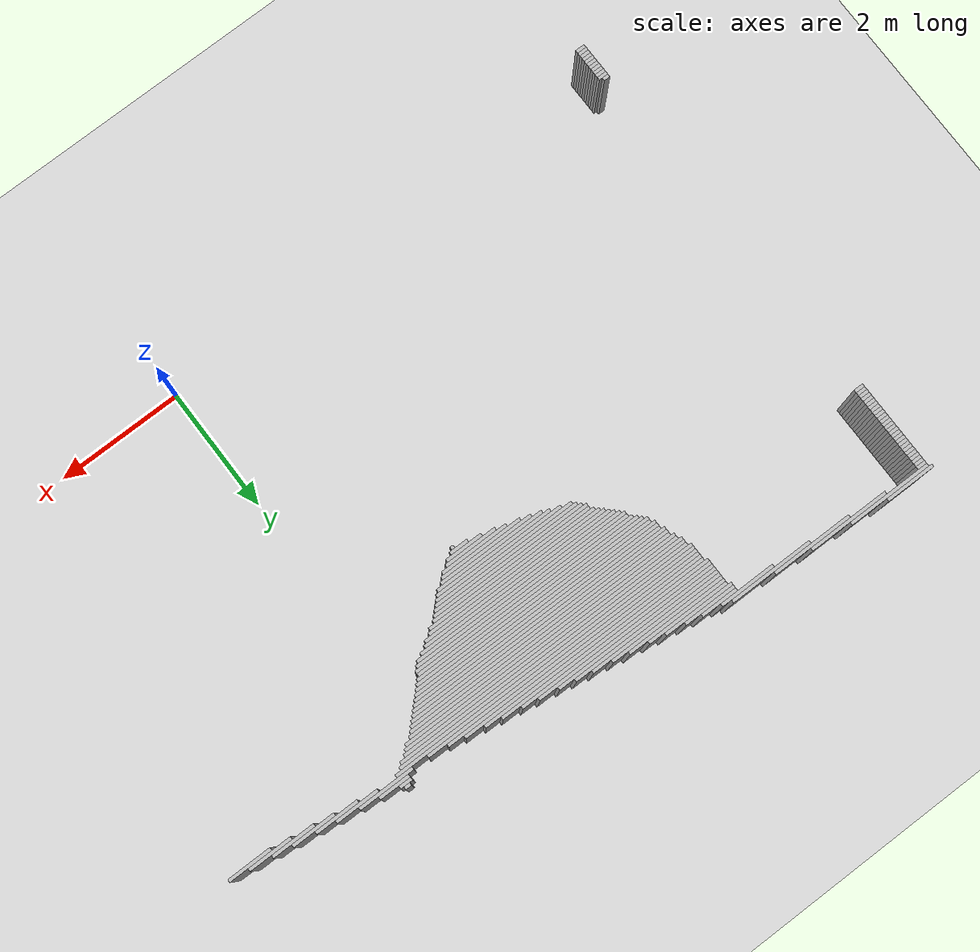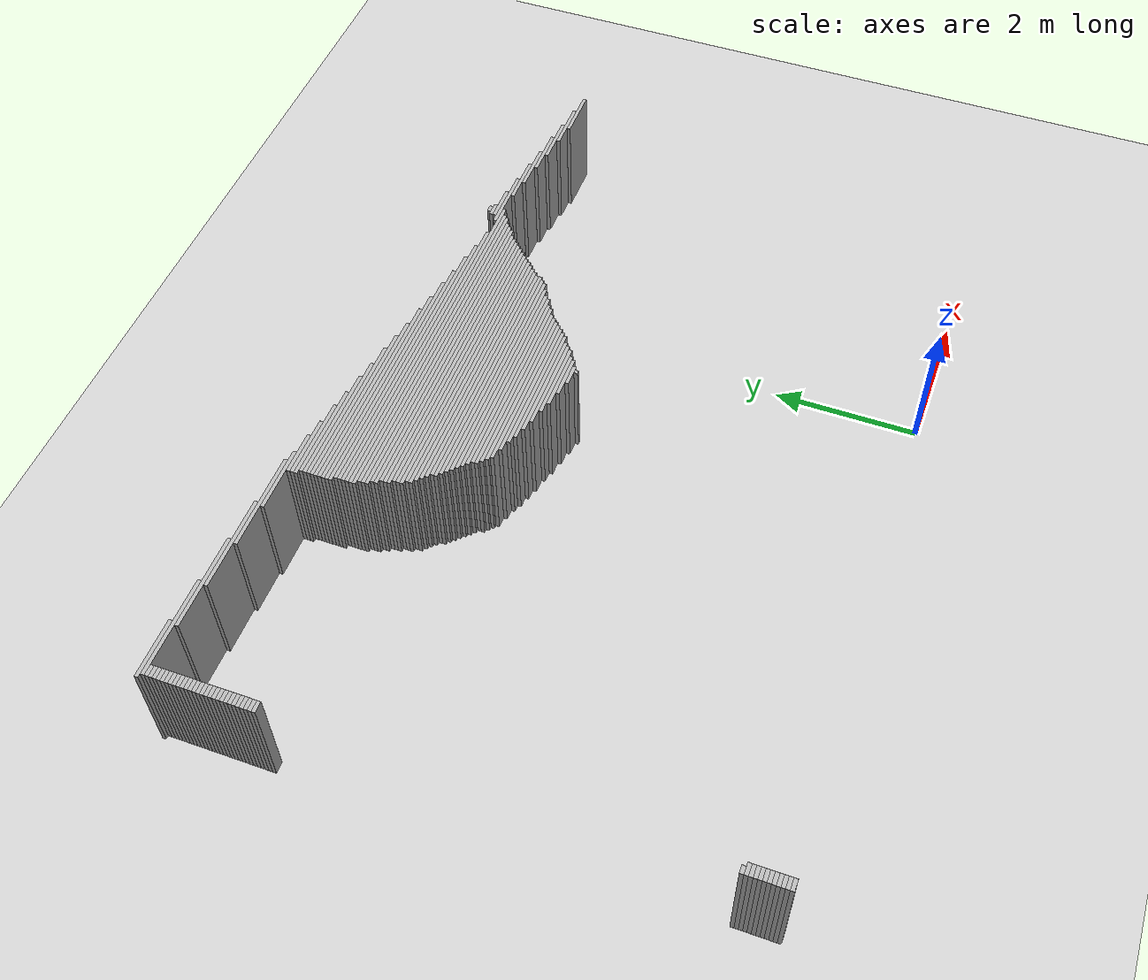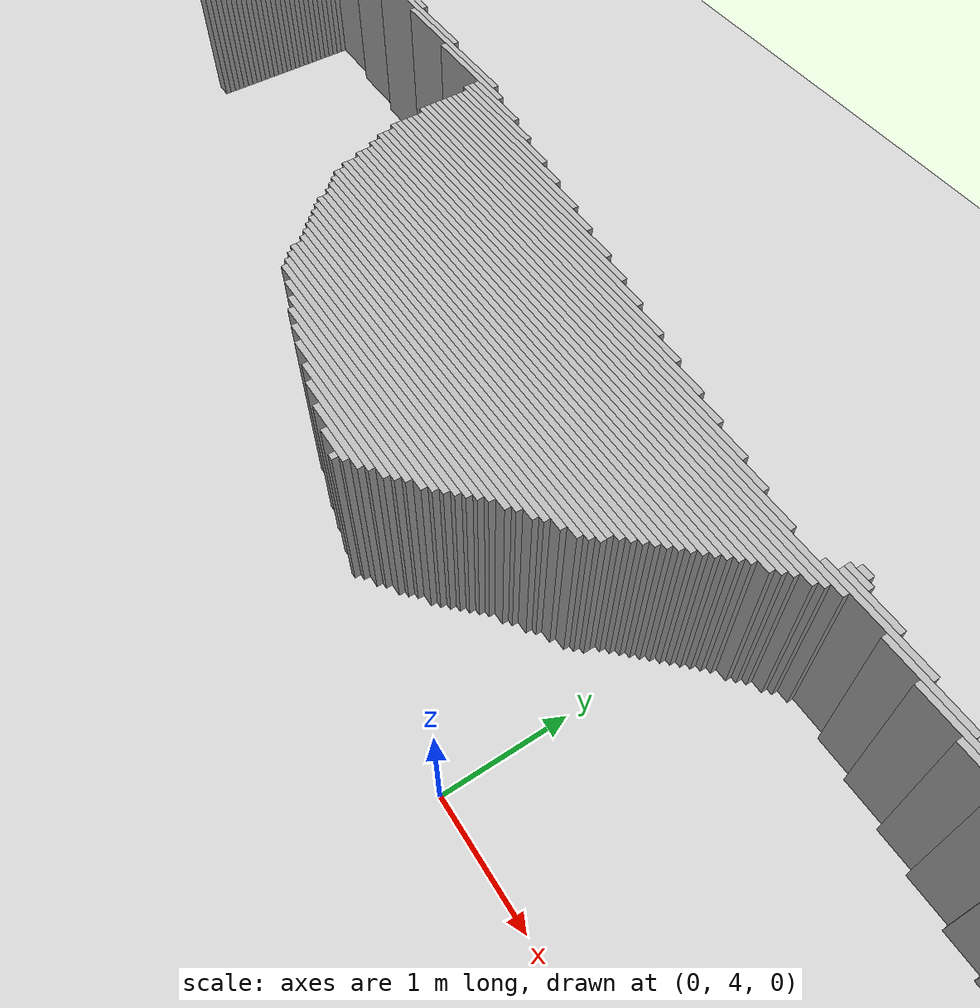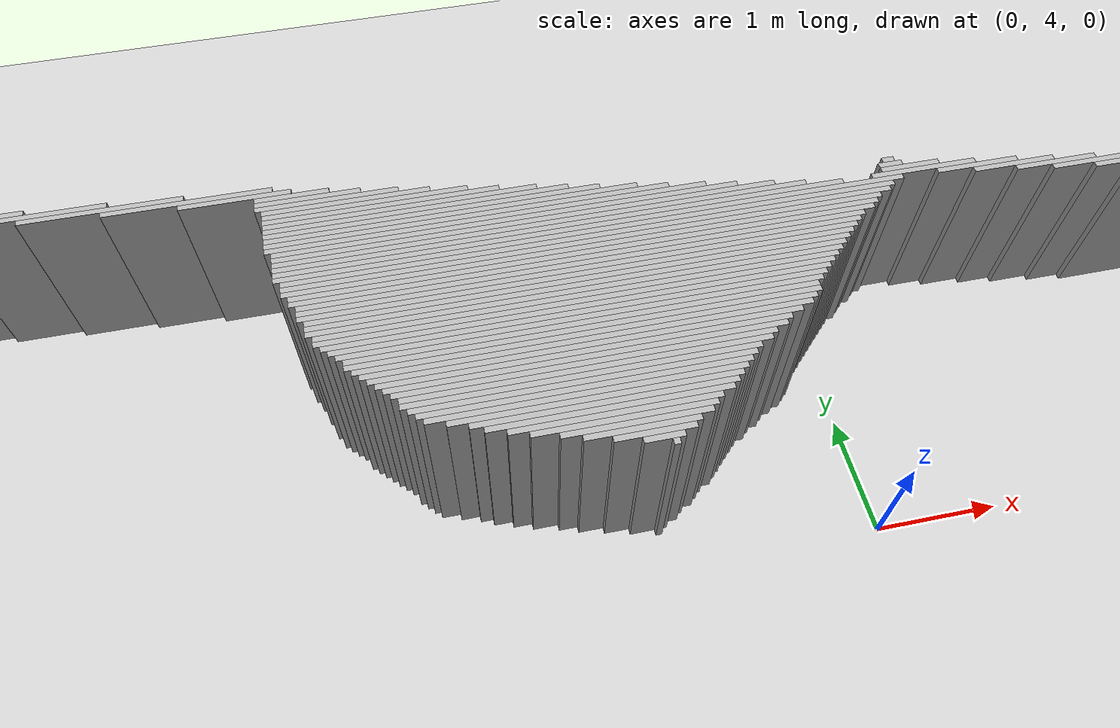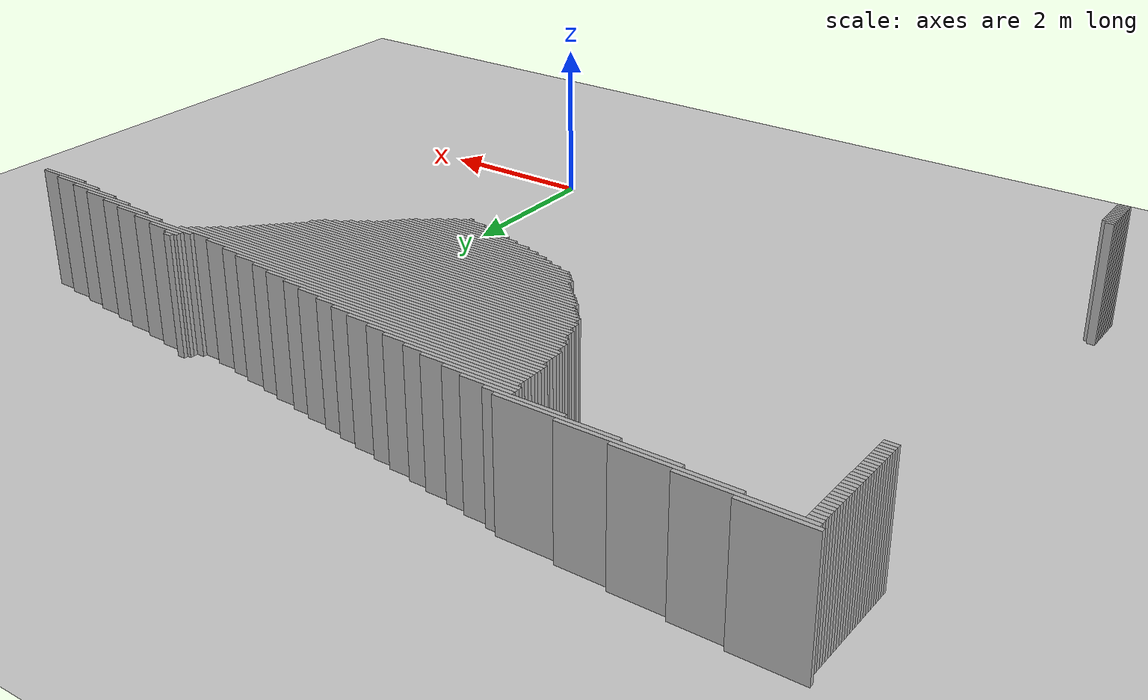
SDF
<sdf version="1.6">
 <world name="df_walled">
  <include><uri>model://sun</uri></include>
  <include><uri>model://ground_plane</uri></include>
  <model name="df_walls">
   <static>true</static>
   <link name="wall_00002">
    <pose>-7.2610 7.4410 0.7500 0 0 0</pose>
    <collision name="col"><geometry><box><size>0.8000 0.0500 1.5000</size></box></geometry></collision>
    <visual name="vis">
     <geometry><box><size>0.8000 0.0500 1.5000</size></box></geometry>
     <material><ambient>0.5 0.5 0.5 1</ambient><diffuse>0.7 0.7 0.7 1</diffuse></material>
    </visual>
   </link>
   <link name="wall_00003">
    <pose>-6.9360 7.3910 0.7500 0 0 0</pose>
    <collision name="col"><geometry><box><size>1.3500 0.0500 1.5000</size></box></geometry></collision>
    <visual name="vis">
     <geometry><box><size>1.3500 0.0500 1.5000</size></box></geometry>
     <material><ambient>0.5 0.5 0.5 1</ambient><diffuse>0.7 0.7 0.7 1</diffuse></material>
    </visual>
   </link>
   <link name="wall_00004">
    <pose>-7.5360 7.3410 0.7500 0 0 0</pose>
    <collision name="col"><geometry><box><size>0.1500 0.0500 1.5000</size></box></geometry></collision>
    <visual name="vis">
     <geometry><box><size>0.1500 0.0500 1.5000</size></box></geometry>
     <material><ambient>0.5 0.5 0.5 1</ambient><diffuse>0.7 0.7 0.7 1</diffuse></material>
    </visual>
   </link>
   <link name="wall_00005">
    <pose>-6.2610 7.3410 0.7500 0 0 0</pose>
    <collision name="col"><geometry><box><size>1.3000 0.0500 1.5000</size></box></geometry></collision>
    <visual name="vis">
     <geometry><box><size>1.3000 0.0500 1.5000</size></box></geometry>
     <material><ambient>0.5 0.5 0.5 1</ambient><diffuse>0.7 0.7 0.7 1</diffuse></material>
    </visual>
   </link>
   <link name="wall_00006">
    <pose>-7.5360 7.2910 0.7500 0 0 0</pose>
    <collision name="col"><geometry><box><size>0.1500 0.0500 1.5000</size></box></geometry></collision>
    <visual name="vis">
     <geometry><box><size>0.1500 0.0500 1.5000</size></box></geometry>
     <material><ambient>0.5 0.5 0.5 1</ambient><diffuse>0.7 0.7 0.7 1</diffuse></material>
    </visual>
   </link>
   <link name="wall_00007">
    <pose>-5.6610 7.2910 0.7500 0 0 0</pose>
    <collision name="col"><geometry><box><size>1.3000 0.0500 1.5000</size></box></geometry></collision>
    <visual name="vis">
     <geometry><box><size>1.3000 0.0500 1.5000</size></box></geometry>
     <material><ambient>0.5 0.5 0.5 1</ambient><diffuse>0.7 0.7 0.7 1</diffuse></material>
    </visual>
   </link>
   <link name="wall_00008">
    <pose>-7.5360 7.2410 0.7500 0 0 0</pose>
    <collision name="col"><geometry><box><size>0.1500 0.0500 1.5000</size></box></geometry></collision>
    <visual name="vis">
     <geometry><box><size>0.1500 0.0500 1.5000</size></box></geometry>
     <material><ambient>0.5 0.5 0.5 1</ambient><diffuse>0.7 0.7 0.7 1</diffuse></material>
    </visual>
   </link>
   <link name="wall_00009">
    <pose>-4.9860 7.2410 0.7500 0 0 0</pose>
    <collision name="col"><geometry><box><size>1.3500 0.0500 1.5000</size></box></geometry></collision>
    <visual name="vis">
     <geometry><box><size>1.3500 0.0500 1.5000</size></box></geometry>
     <material><ambient>0.5 0.5 0.5 1</ambient><diffuse>0.7 0.7 0.7 1</diffuse></material>
    </visual>
   </link>
   <link name="wall_00010">
    <pose>-7.5360 7.1910 0.7500 0 0 0</pose>
    <collision name="col"><geometry><box><size>0.1500 0.0500 1.5000</size></box></geometry></collision>
    <visual name="vis">
     <geometry><box><size>0.1500 0.0500 1.5000</size></box></geometry>
     <material><ambient>0.5 0.5 0.5 1</ambient><diffuse>0.7 0.7 0.7 1</diffuse></material>
    </visual>
   </link>
   <link name="wall_00011">
    <pose>-4.6110 7.1910 0.7500 0 0 0</pose>
    <collision name="col"><geometry><box><size>0.9000 0.0500 1.5000</size></box></geometry></collision>
    <visual name="vis">
     <geometry><box><size>0.9000 0.0500 1.5000</size></box></geometry>
     <material><ambient>0.5 0.5 0.5 1</ambient><diffuse>0.7 0.7 0.7 1</diffuse></material>
    </visual>
   </link>
   <link name="wall_00012">
    <pose>-7.5360 7.1410 0.7500 0 0 0</pose>
    <collision name="col"><geometry><box><size>0.1500 0.0500 1.5000</size></box></geometry></collision>
    <visual name="vis">
     <geometry><box><size>0.1500 0.0500 1.5000</size></box></geometry>
     <material><ambient>0.5 0.5 0.5 1</ambient><diffuse>0.7 0.7 0.7 1</diffuse></material>
    </visual>
   </link>
   <link name="wall_00013">
    <pose>-4.1610 7.1410 0.7500 0 0 0</pose>
    <collision name="col"><geometry><box><size>0.6000 0.0500 1.5000</size></box></geometry></collision>
    <visual name="vis">
     <geometry><box><size>0.6000 0.0500 1.5000</size></box></geometry>
     <material><ambient>0.5 0.5 0.5 1</ambient><diffuse>0.7 0.7 0.7 1</diffuse></material>
    </visual>
   </link>
   <link name="wall_00014">
    <pose>-7.5360 7.0910 0.7500 0 0 0</pose>
    <collision name="col"><geometry><box><size>0.1500 0.0500 1.5000</size></box></geometry></collision>
    <visual name="vis">
     <geometry><box><size>0.1500 0.0500 1.5000</size></box></geometry>
     <material><ambient>0.5 0.5 0.5 1</ambient><diffuse>0.7 0.7 0.7 1</diffuse></material>
    </visual>
   </link>
   <link name="wall_00015">
    <pose>-4.0360 7.0910 0.7500 0 0 0</pose>
    <collision name="col"><geometry><box><size>0.8500 0.0500 1.5000</size></box></geometry></collision>
    <visual name="vis">
     <geometry><box><size>0.8500 0.0500 1.5000</size></box></geometry>
     <material><ambient>0.5 0.5 0.5 1</ambient><diffuse>0.7 0.7 0.7 1</diffuse></material>
    </visual>
   </link>
   <link name="wall_00016">
    <pose>-7.5360 7.0410 0.7500 0 0 0</pose>
    <collision name="col"><geometry><box><size>0.1500 0.0500 1.5000</size></box></geometry></collision>
    <visual name="vis">
     <geometry><box><size>0.1500 0.0500 1.5000</size></box></geometry>
     <material><ambient>0.5 0.5 0.5 1</ambient><diffuse>0.7 0.7 0.7 1</diffuse></material>
    </visual>
   </link>
   <link name="wall_00017">
    <pose>-3.8860 7.0410 0.7500 0 0 0</pose>
    <collision name="col"><geometry><box><size>1.1500 0.0500 1.5000</size></box></geometry></collision>
    <visual name="vis">
     <geometry><box><size>1.1500 0.0500 1.5000</size></box></geometry>
     <material><ambient>0.5 0.5 0.5 1</ambient><diffuse>0.7 0.7 0.7 1</diffuse></material>
    </visual>
   </link>
   <link name="wall_00018">
    <pose>-7.5360 6.9910 0.7500 0 0 0</pose>
    <collision name="col"><geometry><box><size>0.1500 0.0500 1.5000</size></box></geometry></collision>
    <visual name="vis">
     <geometry><box><size>0.1500 0.0500 1.5000</size></box></geometry>
     <material><ambient>0.5 0.5 0.5 1</ambient><diffuse>0.7 0.7 0.7 1</diffuse></material>
    </visual>
   </link>
   <link name="wall_00019">
    <pose>-3.7360 6.9910 0.7500 0 0 0</pose>
    <collision name="col"><geometry><box><size>1.3500 0.0500 1.5000</size></box></geometry></collision>
    <visual name="vis">
     <geometry><box><size>1.3500 0.0500 1.5000</size></box></geometry>
     <material><ambient>0.5 0.5 0.5 1</ambient><diffuse>0.7 0.7 0.7 1</diffuse></material>
    </visual>
   </link>
   <link name="wall_00020">
    <pose>-7.5360 6.9410 0.7500 0 0 0</pose>
    <collision name="col"><geometry><box><size>0.1500 0.0500 1.5000</size></box></geometry></collision>
    <visual name="vis">
     <geometry><box><size>0.1500 0.0500 1.5000</size></box></geometry>
     <material><ambient>0.5 0.5 0.5 1</ambient><diffuse>0.7 0.7 0.7 1</diffuse></material>
    </visual>
   </link>
   <link name="wall_00021">
    <pose>-3.5860 6.9410 0.7500 0 0 0</pose>
    <collision name="col"><geometry><box><size>1.6500 0.0500 1.5000</size></box></geometry></collision>
    <visual name="vis">
     <geometry><box><size>1.6500 0.0500 1.5000</size></box></geometry>
     <material><ambient>0.5 0.5 0.5 1</ambient><diffuse>0.7 0.7 0.7 1</diffuse></material>
    </visual>
   </link>
   <link name="wall_00022">
    <pose>-7.5360 6.8910 0.7500 0 0 0</pose>
    <collision name="col"><geometry><box><size>0.1500 0.0500 1.5000</size></box></geometry></collision>
    <visual name="vis">
     <geometry><box><size>0.1500 0.0500 1.5000</size></box></geometry>
     <material><ambient>0.5 0.5 0.5 1</ambient><diffuse>0.7 0.7 0.7 1</diffuse></material>
    </visual>
   </link>
   <link name="wall_00023">
    <pose>-3.4610 6.8910 0.7500 0 0 0</pose>
    <collision name="col"><geometry><box><size>1.9000 0.0500 1.5000</size></box></geometry></collision>
    <visual name="vis">
     <geometry><box><size>1.9000 0.0500 1.5000</size></box></geometry>
     <material><ambient>0.5 0.5 0.5 1</ambient><diffuse>0.7 0.7 0.7 1</diffuse></material>
    </visual>
   </link>
   <link name="wall_00024">
    <pose>-7.5360 6.8410 0.7500 0 0 0</pose>
    <collision name="col"><geometry><box><size>0.1500 0.0500 1.5000</size></box></geometry></collision>
    <visual name="vis">
     <geometry><box><size>0.1500 0.0500 1.5000</size></box></geometry>
     <material><ambient>0.5 0.5 0.5 1</ambient><diffuse>0.7 0.7 0.7 1</diffuse></material>
    </visual>
   </link>
   <link name="wall_00025">
    <pose>-3.3110 6.8410 0.7500 0 0 0</pose>
    <collision name="col"><geometry><box><size>2.2000 0.0500 1.5000</size></box></geometry></collision>
    <visual name="vis">
     <geometry><box><size>2.2000 0.0500 1.5000</size></box></geometry>
     <material><ambient>0.5 0.5 0.5 1</ambient><diffuse>0.7 0.7 0.7 1</diffuse></material>
    </visual>
   </link>
   <link name="wall_00026">
    <pose>-7.5360 6.7910 0.7500 0 0 0</pose>
    <collision name="col"><geometry><box><size>0.1500 0.0500 1.5000</size></box></geometry></collision>
    <visual name="vis">
     <geometry><box><size>0.1500 0.0500 1.5000</size></box></geometry>
     <material><ambient>0.5 0.5 0.5 1</ambient><diffuse>0.7 0.7 0.7 1</diffuse></material>
    </visual>
   </link>
   <link name="wall_00027">
    <pose>-3.1860 6.7910 0.7500 0 0 0</pose>
    <collision name="col"><geometry><box><size>2.4500 0.0500 1.5000</size></box></geometry></collision>
    <visual name="vis">
     <geometry><box><size>2.4500 0.0500 1.5000</size></box></geometry>
     <material><ambient>0.5 0.5 0.5 1</ambient><diffuse>0.7 0.7 0.7 1</diffuse></material>
    </visual>
   </link>
   <link name="wall_00028">
    <pose>-7.5360 6.7410 0.7500 0 0 0</pose>
    <collision name="col"><geometry><box><size>0.1500 0.0500 1.5000</size></box></geometry></collision>
    <visual name="vis">
     <geometry><box><size>0.1500 0.0500 1.5000</size></box></geometry>
     <material><ambient>0.5 0.5 0.5 1</ambient><diffuse>0.7 0.7 0.7 1</diffuse></material>
    </visual>
   </link>
   <link name="wall_00029">
    <pose>-3.0610 6.7410 0.7500 0 0 0</pose>
    <collision name="col"><geometry><box><size>2.7000 0.0500 1.5000</size></box></geometry></collision>
    <visual name="vis">
     <geometry><box><size>2.7000 0.0500 1.5000</size></box></geometry>
     <material><ambient>0.5 0.5 0.5 1</ambient><diffuse>0.7 0.7 0.7 1</diffuse></material>
    </visual>
   </link>
   <link name="wall_00030">
    <pose>-7.5360 6.6910 0.7500 0 0 0</pose>
    <collision name="col"><geometry><box><size>0.1500 0.0500 1.5000</size></box></geometry></collision>
    <visual name="vis">
     <geometry><box><size>0.1500 0.0500 1.5000</size></box></geometry>
     <material><ambient>0.5 0.5 0.5 1</ambient><diffuse>0.7 0.7 0.7 1</diffuse></material>
    </visual>
   </link>
   <link name="wall_00031">
    <pose>-2.9110 6.6910 0.7500 0 0 0</pose>
    <collision name="col"><geometry><box><size>3.0000 0.0500 1.5000</size></box></geometry></collision>
    <visual name="vis">
     <geometry><box><size>3.0000 0.0500 1.5000</size></box></geometry>
     <material><ambient>0.5 0.5 0.5 1</ambient><diffuse>0.7 0.7 0.7 1</diffuse></material>
    </visual>
   </link>
   <link name="wall_00032">
    <pose>-7.5360 6.6410 0.7500 0 0 0</pose>
    <collision name="col"><geometry><box><size>0.1500 0.0500 1.5000</size></box></geometry></collision>
    <visual name="vis">
     <geometry><box><size>0.1500 0.0500 1.5000</size></box></geometry>
     <material><ambient>0.5 0.5 0.5 1</ambient><diffuse>0.7 0.7 0.7 1</diffuse></material>
    </visual>
   </link>
   <link name="wall_00033">
    <pose>-2.7860 6.6410 0.7500 0 0 0</pose>
    <collision name="col"><geometry><box><size>3.2500 0.0500 1.5000</size></box></geometry></collision>
    <visual name="vis">
     <geometry><box><size>3.2500 0.0500 1.5000</size></box></geometry>
     <material><ambient>0.5 0.5 0.5 1</ambient><diffuse>0.7 0.7 0.7 1</diffuse></material>
    </visual>
   </link>
   <link name="wall_00034">
    <pose>-7.5360 6.5910 0.7500 0 0 0</pose>
    <collision name="col"><geometry><box><size>0.1500 0.0500 1.5000</size></box></geometry></collision>
    <visual name="vis">
     <geometry><box><size>0.1500 0.0500 1.5000</size></box></geometry>
     <material><ambient>0.5 0.5 0.5 1</ambient><diffuse>0.7 0.7 0.7 1</diffuse></material>
    </visual>
   </link>
   <link name="wall_00035">
    <pose>-2.6360 6.5910 0.7500 0 0 0</pose>
    <collision name="col"><geometry><box><size>3.5500 0.0500 1.5000</size></box></geometry></collision>
    <visual name="vis">
     <geometry><box><size>3.5500 0.0500 1.5000</size></box></geometry>
     <material><ambient>0.5 0.5 0.5 1</ambient><diffuse>0.7 0.7 0.7 1</diffuse></material>
    </visual>
   </link>
   <link name="wall_00036">
    <pose>-7.5360 6.5410 0.7500 0 0 0</pose>
    <collision name="col"><geometry><box><size>0.1500 0.0500 1.5000</size></box></geometry></collision>
    <visual name="vis">
     <geometry><box><size>0.1500 0.0500 1.5000</size></box></geometry>
     <material><ambient>0.5 0.5 0.5 1</ambient><diffuse>0.7 0.7 0.7 1</diffuse></material>
    </visual>
   </link>
   <link name="wall_00037">
    <pose>-2.4860 6.5410 0.7500 0 0 0</pose>
    <collision name="col"><geometry><box><size>3.7500 0.0500 1.5000</size></box></geometry></collision>
    <visual name="vis">
     <geometry><box><size>3.7500 0.0500 1.5000</size></box></geometry>
     <material><ambient>0.5 0.5 0.5 1</ambient><diffuse>0.7 0.7 0.7 1</diffuse></material>
    </visual>
   </link>
   <link name="wall_00038">
    <pose>0.6890 6.5410 0.7500 0 0 0</pose>
    <collision name="col"><geometry><box><size>0.1000 0.0500 1.5000</size></box></geometry></collision>
    <visual name="vis">
     <geometry><box><size>0.1000 0.0500 1.5000</size></box></geometry>
     <material><ambient>0.5 0.5 0.5 1</ambient><diffuse>0.7 0.7 0.7 1</diffuse></material>
    </visual>
   </link>
   <link name="wall_00039">
    <pose>-7.5360 6.4910 0.7500 0 0 0</pose>
    <collision name="col"><geometry><box><size>0.1500 0.0500 1.5000</size></box></geometry></collision>
    <visual name="vis">
     <geometry><box><size>0.1500 0.0500 1.5000</size></box></geometry>
     <material><ambient>0.5 0.5 0.5 1</ambient><diffuse>0.7 0.7 0.7 1</diffuse></material>
    </visual>
   </link>
   <link name="wall_00040">
    <pose>-2.3360 6.4910 0.7500 0 0 0</pose>
    <collision name="col"><geometry><box><size>4.0500 0.0500 1.5000</size></box></geometry></collision>
    <visual name="vis">
     <geometry><box><size>4.0500 0.0500 1.5000</size></box></geometry>
     <material><ambient>0.5 0.5 0.5 1</ambient><diffuse>0.7 0.7 0.7 1</diffuse></material>
    </visual>
   </link>
   <link name="wall_00041">
    <pose>0.6890 6.4910 0.7500 0 0 0</pose>
    <collision name="col"><geometry><box><size>0.2000 0.0500 1.5000</size></box></geometry></collision>
    <visual name="vis">
     <geometry><box><size>0.2000 0.0500 1.5000</size></box></geometry>
     <material><ambient>0.5 0.5 0.5 1</ambient><diffuse>0.7 0.7 0.7 1</diffuse></material>
    </visual>
   </link>
   <link name="wall_00042">
    <pose>-7.5360 6.4410 0.7500 0 0 0</pose>
    <collision name="col"><geometry><box><size>0.1500 0.0500 1.5000</size></box></geometry></collision>
    <visual name="vis">
     <geometry><box><size>0.1500 0.0500 1.5000</size></box></geometry>
     <material><ambient>0.5 0.5 0.5 1</ambient><diffuse>0.7 0.7 0.7 1</diffuse></material>
    </visual>
   </link>
   <link name="wall_00043">
    <pose>-2.2110 6.4410 0.7500 0 0 0</pose>
    <collision name="col"><geometry><box><size>4.3000 0.0500 1.5000</size></box></geometry></collision>
    <visual name="vis">
     <geometry><box><size>4.3000 0.0500 1.5000</size></box></geometry>
     <material><ambient>0.5 0.5 0.5 1</ambient><diffuse>0.7 0.7 0.7 1</diffuse></material>
    </visual>
   </link>
   <link name="wall_00044">
    <pose>0.8390 6.4410 0.7500 0 0 0</pose>
    <collision name="col"><geometry><box><size>0.5000 0.0500 1.5000</size></box></geometry></collision>
    <visual name="vis">
     <geometry><box><size>0.5000 0.0500 1.5000</size></box></geometry>
     <material><ambient>0.5 0.5 0.5 1</ambient><diffuse>0.7 0.7 0.7 1</diffuse></material>
    </visual>
   </link>
   <link name="wall_00045">
    <pose>-7.5360 6.3910 0.7500 0 0 0</pose>
    <collision name="col"><geometry><box><size>0.1500 0.0500 1.5000</size></box></geometry></collision>
    <visual name="vis">
     <geometry><box><size>0.1500 0.0500 1.5000</size></box></geometry>
     <material><ambient>0.5 0.5 0.5 1</ambient><diffuse>0.7 0.7 0.7 1</diffuse></material>
    </visual>
   </link>
   <link name="wall_00046">
    <pose>-2.0610 6.3910 0.7500 0 0 0</pose>
    <collision name="col"><geometry><box><size>4.6000 0.0500 1.5000</size></box></geometry></collision>
    <visual name="vis">
     <geometry><box><size>4.6000 0.0500 1.5000</size></box></geometry>
     <material><ambient>0.5 0.5 0.5 1</ambient><diffuse>0.7 0.7 0.7 1</diffuse></material>
    </visual>
   </link>
   <link name="wall_00047">
    <pose>0.9390 6.3910 0.7500 0 0 0</pose>
    <collision name="col"><geometry><box><size>0.9000 0.0500 1.5000</size></box></geometry></collision>
    <visual name="vis">
     <geometry><box><size>0.9000 0.0500 1.5000</size></box></geometry>
     <material><ambient>0.5 0.5 0.5 1</ambient><diffuse>0.7 0.7 0.7 1</diffuse></material>
    </visual>
   </link>
   <link name="wall_00048">
    <pose>-7.5360 6.3410 0.7500 0 0 0</pose>
    <collision name="col"><geometry><box><size>0.1500 0.0500 1.5000</size></box></geometry></collision>
    <visual name="vis">
     <geometry><box><size>0.1500 0.0500 1.5000</size></box></geometry>
     <material><ambient>0.5 0.5 0.5 1</ambient><diffuse>0.7 0.7 0.7 1</diffuse></material>
    </visual>
   </link>
   <link name="wall_00049">
    <pose>-1.8110 6.3410 0.7500 0 0 0</pose>
    <collision name="col"><geometry><box><size>5.1000 0.0500 1.5000</size></box></geometry></collision>
    <visual name="vis">
     <geometry><box><size>5.1000 0.0500 1.5000</size></box></geometry>
     <material><ambient>0.5 0.5 0.5 1</ambient><diffuse>0.7 0.7 0.7 1</diffuse></material>
    </visual>
   </link>
   <link name="wall_00050">
    <pose>1.3890 6.3410 0.7500 0 0 0</pose>
    <collision name="col"><geometry><box><size>0.7000 0.0500 1.5000</size></box></geometry></collision>
    <visual name="vis">
     <geometry><box><size>0.7000 0.0500 1.5000</size></box></geometry>
     <material><ambient>0.5 0.5 0.5 1</ambient><diffuse>0.7 0.7 0.7 1</diffuse></material>
    </visual>
   </link>
   <link name="wall_00051">
    <pose>-7.5360 6.2910 0.7500 0 0 0</pose>
    <collision name="col"><geometry><box><size>0.1500 0.0500 1.5000</size></box></geometry></collision>
    <visual name="vis">
     <geometry><box><size>0.1500 0.0500 1.5000</size></box></geometry>
     <material><ambient>0.5 0.5 0.5 1</ambient><diffuse>0.7 0.7 0.7 1</diffuse></material>
    </visual>
   </link>
   <link name="wall_00052">
    <pose>-1.8610 6.2910 0.7500 0 0 0</pose>
    <collision name="col"><geometry><box><size>5.0000 0.0500 1.5000</size></box></geometry></collision>
    <visual name="vis">
     <geometry><box><size>5.0000 0.0500 1.5000</size></box></geometry>
     <material><ambient>0.5 0.5 0.5 1</ambient><diffuse>0.7 0.7 0.7 1</diffuse></material>
    </visual>
   </link>
   <link name="wall_00053">
    <pose>1.6890 6.2910 0.7500 0 0 0</pose>
    <collision name="col"><geometry><box><size>0.7000 0.0500 1.5000</size></box></geometry></collision>
    <visual name="vis">
     <geometry><box><size>0.7000 0.0500 1.5000</size></box></geometry>
     <material><ambient>0.5 0.5 0.5 1</ambient><diffuse>0.7 0.7 0.7 1</diffuse></material>
    </visual>
   </link>
   <link name="wall_00054">
    <pose>-7.5360 6.2410 0.7500 0 0 0</pose>
    <collision name="col"><geometry><box><size>0.1500 0.0500 1.5000</size></box></geometry></collision>
    <visual name="vis">
     <geometry><box><size>0.1500 0.0500 1.5000</size></box></geometry>
     <material><ambient>0.5 0.5 0.5 1</ambient><diffuse>0.7 0.7 0.7 1</diffuse></material>
    </visual>
   </link>
   <link name="wall_00055">
    <pose>-1.8610 6.2410 0.7500 0 0 0</pose>
    <collision name="col"><geometry><box><size>4.9000 0.0500 1.5000</size></box></geometry></collision>
    <visual name="vis">
     <geometry><box><size>4.9000 0.0500 1.5000</size></box></geometry>
     <material><ambient>0.5 0.5 0.5 1</ambient><diffuse>0.7 0.7 0.7 1</diffuse></material>
    </visual>
   </link>
   <link name="wall_00056">
    <pose>2.0390 6.2410 0.7500 0 0 0</pose>
    <collision name="col"><geometry><box><size>0.7000 0.0500 1.5000</size></box></geometry></collision>
    <visual name="vis">
     <geometry><box><size>0.7000 0.0500 1.5000</size></box></geometry>
     <material><ambient>0.5 0.5 0.5 1</ambient><diffuse>0.7 0.7 0.7 1</diffuse></material>
    </visual>
   </link>
   <link name="wall_00057">
    <pose>-7.5360 6.1910 0.7500 0 0 0</pose>
    <collision name="col"><geometry><box><size>0.1500 0.0500 1.5000</size></box></geometry></collision>
    <visual name="vis">
     <geometry><box><size>0.1500 0.0500 1.5000</size></box></geometry>
     <material><ambient>0.5 0.5 0.5 1</ambient><diffuse>0.7 0.7 0.7 1</diffuse></material>
    </visual>
   </link>
   <link name="wall_00058">
    <pose>-1.9110 6.1910 0.7500 0 0 0</pose>
    <collision name="col"><geometry><box><size>4.8000 0.0500 1.5000</size></box></geometry></collision>
    <visual name="vis">
     <geometry><box><size>4.8000 0.0500 1.5000</size></box></geometry>
     <material><ambient>0.5 0.5 0.5 1</ambient><diffuse>0.7 0.7 0.7 1</diffuse></material>
    </visual>
   </link>
   <link name="wall_00059">
    <pose>2.3390 6.1910 0.7500 0 0 0</pose>
    <collision name="col"><geometry><box><size>0.7000 0.0500 1.5000</size></box></geometry></collision>
    <visual name="vis">
     <geometry><box><size>0.7000 0.0500 1.5000</size></box></geometry>
     <material><ambient>0.5 0.5 0.5 1</ambient><diffuse>0.7 0.7 0.7 1</diffuse></material>
    </visual>
   </link>
   <link name="wall_00060">
    <pose>-7.5360 6.1410 0.7500 0 0 0</pose>
    <collision name="col"><geometry><box><size>0.1500 0.0500 1.5000</size></box></geometry></collision>
    <visual name="vis">
     <geometry><box><size>0.1500 0.0500 1.5000</size></box></geometry>
     <material><ambient>0.5 0.5 0.5 1</ambient><diffuse>0.7 0.7 0.7 1</diffuse></material>
    </visual>
   </link>
   <link name="wall_00061">
    <pose>-1.9360 6.1410 0.7500 0 0 0</pose>
    <collision name="col"><geometry><box><size>4.7500 0.0500 1.5000</size></box></geometry></collision>
    <visual name="vis">
     <geometry><box><size>4.7500 0.0500 1.5000</size></box></geometry>
     <material><ambient>0.5 0.5 0.5 1</ambient><diffuse>0.7 0.7 0.7 1</diffuse></material>
    </visual>
   </link>
   <link name="wall_00062">
    <pose>2.6890 6.1410 0.7500 0 0 0</pose>
    <collision name="col"><geometry><box><size>0.7000 0.0500 1.5000</size></box></geometry></collision>
    <visual name="vis">
     <geometry><box><size>0.7000 0.0500 1.5000</size></box></geometry>
     <material><ambient>0.5 0.5 0.5 1</ambient><diffuse>0.7 0.7 0.7 1</diffuse></material>
    </visual>
   </link>
   <link name="wall_00063">
    <pose>-7.5360 6.0910 0.7500 0 0 0</pose>
    <collision name="col"><geometry><box><size>0.1500 0.0500 1.5000</size></box></geometry></collision>
    <visual name="vis">
     <geometry><box><size>0.1500 0.0500 1.5000</size></box></geometry>
     <material><ambient>0.5 0.5 0.5 1</ambient><diffuse>0.7 0.7 0.7 1</diffuse></material>
    </visual>
   </link>
   <link name="wall_00064">
    <pose>-1.9360 6.0910 0.7500 0 0 0</pose>
    <collision name="col"><geometry><box><size>4.6500 0.0500 1.5000</size></box></geometry></collision>
    <visual name="vis">
     <geometry><box><size>4.6500 0.0500 1.5000</size></box></geometry>
     <material><ambient>0.5 0.5 0.5 1</ambient><diffuse>0.7 0.7 0.7 1</diffuse></material>
    </visual>
   </link>
   <link name="wall_00065">
    <pose>2.9890 6.0910 0.7500 0 0 0</pose>
    <collision name="col"><geometry><box><size>0.7000 0.0500 1.5000</size></box></geometry></collision>
    <visual name="vis">
     <geometry><box><size>0.7000 0.0500 1.5000</size></box></geometry>
     <material><ambient>0.5 0.5 0.5 1</ambient><diffuse>0.7 0.7 0.7 1</diffuse></material>
    </visual>
   </link>
   <link name="wall_00066">
    <pose>-7.5360 6.0410 0.7500 0 0 0</pose>
    <collision name="col"><geometry><box><size>0.1500 0.0500 1.5000</size></box></geometry></collision>
    <visual name="vis">
     <geometry><box><size>0.1500 0.0500 1.5000</size></box></geometry>
     <material><ambient>0.5 0.5 0.5 1</ambient><diffuse>0.7 0.7 0.7 1</diffuse></material>
    </visual>
   </link>
   <link name="wall_00067">
    <pose>-1.9860 6.0410 0.7500 0 0 0</pose>
    <collision name="col"><geometry><box><size>4.5500 0.0500 1.5000</size></box></geometry></collision>
    <visual name="vis">
     <geometry><box><size>4.5500 0.0500 1.5000</size></box></geometry>
     <material><ambient>0.5 0.5 0.5 1</ambient><diffuse>0.7 0.7 0.7 1</diffuse></material>
    </visual>
   </link>
   <link name="wall_00069">
    <pose>-7.5360 5.9910 0.7500 0 0 0</pose>
    <collision name="col"><geometry><box><size>0.1500 0.0500 1.5000</size></box></geometry></collision>
    <visual name="vis">
     <geometry><box><size>0.1500 0.0500 1.5000</size></box></geometry>
     <material><ambient>0.5 0.5 0.5 1</ambient><diffuse>0.7 0.7 0.7 1</diffuse></material>
    </visual>
   </link>
   <link name="wall_00070">
    <pose>-1.9860 5.9910 0.7500 0 0 0</pose>
    <collision name="col"><geometry><box><size>4.4500 0.0500 1.5000</size></box></geometry></collision>
    <visual name="vis">
     <geometry><box><size>4.4500 0.0500 1.5000</size></box></geometry>
     <material><ambient>0.5 0.5 0.5 1</ambient><diffuse>0.7 0.7 0.7 1</diffuse></material>
    </visual>
   </link>
   <link name="wall_00073">
    <pose>-2.0110 5.9410 0.7500 0 0 0</pose>
    <collision name="col"><geometry><box><size>4.4000 0.0500 1.5000</size></box></geometry></collision>
    <visual name="vis">
     <geometry><box><size>4.4000 0.0500 1.5000</size></box></geometry>
     <material><ambient>0.5 0.5 0.5 1</ambient><diffuse>0.7 0.7 0.7 1</diffuse></material>
    </visual>
   </link>
   <link name="wall_00076">
    <pose>-2.0360 5.8910 0.7500 0 0 0</pose>
    <collision name="col"><geometry><box><size>4.3500 0.0500 1.5000</size></box></geometry></collision>
    <visual name="vis">
     <geometry><box><size>4.3500 0.0500 1.5000</size></box></geometry>
     <material><ambient>0.5 0.5 0.5 1</ambient><diffuse>0.7 0.7 0.7 1</diffuse></material>
    </visual>
   </link>
   <link name="wall_00079">
    <pose>-2.0360 5.8410 0.7500 0 0 0</pose>
    <collision name="col"><geometry><box><size>4.2500 0.0500 1.5000</size></box></geometry></collision>
    <visual name="vis">
     <geometry><box><size>4.2500 0.0500 1.5000</size></box></geometry>
     <material><ambient>0.5 0.5 0.5 1</ambient><diffuse>0.7 0.7 0.7 1</diffuse></material>
    </visual>
   </link>
   <link name="wall_00082">
    <pose>-2.0610 5.7910 0.7500 0 0 0</pose>
    <collision name="col"><geometry><box><size>4.2000 0.0500 1.5000</size></box></geometry></collision>
    <visual name="vis">
     <geometry><box><size>4.2000 0.0500 1.5000</size></box></geometry>
     <material><ambient>0.5 0.5 0.5 1</ambient><diffuse>0.7 0.7 0.7 1</diffuse></material>
    </visual>
   </link>
   <link name="wall_00085">
    <pose>-2.0860 5.7410 0.7500 0 0 0</pose>
    <collision name="col"><geometry><box><size>4.1500 0.0500 1.5000</size></box></geometry></collision>
    <visual name="vis">
     <geometry><box><size>4.1500 0.0500 1.5000</size></box></geometry>
     <material><ambient>0.5 0.5 0.5 1</ambient><diffuse>0.7 0.7 0.7 1</diffuse></material>
    </visual>
   </link>
   <link name="wall_00088">
    <pose>-2.0860 5.6910 0.7500 0 0 0</pose>
    <collision name="col"><geometry><box><size>4.0500 0.0500 1.5000</size></box></geometry></collision>
    <visual name="vis">
     <geometry><box><size>4.0500 0.0500 1.5000</size></box></geometry>
     <material><ambient>0.5 0.5 0.5 1</ambient><diffuse>0.7 0.7 0.7 1</diffuse></material>
    </visual>
   </link>
   <link name="wall_00091">
    <pose>-2.1110 5.6410 0.7500 0 0 0</pose>
    <collision name="col"><geometry><box><size>4.0000 0.0500 1.5000</size></box></geometry></collision>
    <visual name="vis">
     <geometry><box><size>4.0000 0.0500 1.5000</size></box></geometry>
     <material><ambient>0.5 0.5 0.5 1</ambient><diffuse>0.7 0.7 0.7 1</diffuse></material>
    </visual>
   </link>
   <link name="wall_00094">
    <pose>-2.1110 5.5910 0.7500 0 0 0</pose>
    <collision name="col"><geometry><box><size>3.9000 0.0500 1.5000</size></box></geometry></collision>
    <visual name="vis">
     <geometry><box><size>3.9000 0.0500 1.5000</size></box></geometry>
     <material><ambient>0.5 0.5 0.5 1</ambient><diffuse>0.7 0.7 0.7 1</diffuse></material>
    </visual>
   </link>
   <link name="wall_00097">
    <pose>-2.1110 5.5410 0.7500 0 0 0</pose>
    <collision name="col"><geometry><box><size>3.8000 0.0500 1.5000</size></box></geometry></collision>
    <visual name="vis">
     <geometry><box><size>3.8000 0.0500 1.5000</size></box></geometry>
     <material><ambient>0.5 0.5 0.5 1</ambient><diffuse>0.7 0.7 0.7 1</diffuse></material>
    </visual>
   </link>
   <link name="wall_00100">
    <pose>-2.1110 5.4910 0.7500 0 0 0</pose>
    <collision name="col"><geometry><box><size>3.7000 0.0500 1.5000</size></box></geometry></collision>
    <visual name="vis">
     <geometry><box><size>3.7000 0.0500 1.5000</size></box></geometry>
     <material><ambient>0.5 0.5 0.5 1</ambient><diffuse>0.7 0.7 0.7 1</diffuse></material>
    </visual>
   </link>
   <link name="wall_00103">
    <pose>-2.1110 5.4410 0.7500 0 0 0</pose>
    <collision name="col"><geometry><box><size>3.6000 0.0500 1.5000</size></box></geometry></collision>
    <visual name="vis">
     <geometry><box><size>3.6000 0.0500 1.5000</size></box></geometry>
     <material><ambient>0.5 0.5 0.5 1</ambient><diffuse>0.7 0.7 0.7 1</diffuse></material>
    </visual>
   </link>
   <link name="wall_00106">
    <pose>-2.1110 5.3910 0.7500 0 0 0</pose>
    <collision name="col"><geometry><box><size>3.6000 0.0500 1.5000</size></box></geometry></collision>
    <visual name="vis">
     <geometry><box><size>3.6000 0.0500 1.5000</size></box></geometry>
     <material><ambient>0.5 0.5 0.5 1</ambient><diffuse>0.7 0.7 0.7 1</diffuse></material>
    </visual>
   </link>
   <link name="wall_00109">
    <pose>-2.1110 5.3410 0.7500 0 0 0</pose>
    <collision name="col"><geometry><box><size>3.5000 0.0500 1.5000</size></box></geometry></collision>
    <visual name="vis">
     <geometry><box><size>3.5000 0.0500 1.5000</size></box></geometry>
     <material><ambient>0.5 0.5 0.5 1</ambient><diffuse>0.7 0.7 0.7 1</diffuse></material>
    </visual>
   </link>
   <link name="wall_00112">
    <pose>-2.1110 5.2910 0.7500 0 0 0</pose>
    <collision name="col"><geometry><box><size>3.4000 0.0500 1.5000</size></box></geometry></collision>
    <visual name="vis">
     <geometry><box><size>3.4000 0.0500 1.5000</size></box></geometry>
     <material><ambient>0.5 0.5 0.5 1</ambient><diffuse>0.7 0.7 0.7 1</diffuse></material>
    </visual>
   </link>
   <link name="wall_00115">
    <pose>-2.1360 5.2410 0.7500 0 0 0</pose>
    <collision name="col"><geometry><box><size>3.2500 0.0500 1.5000</size></box></geometry></collision>
    <visual name="vis">
     <geometry><box><size>3.2500 0.0500 1.5000</size></box></geometry>
     <material><ambient>0.5 0.5 0.5 1</ambient><diffuse>0.7 0.7 0.7 1</diffuse></material>
    </visual>
   </link>
   <link name="wall_00118">
    <pose>-2.1610 5.1910 0.7500 0 0 0</pose>
    <collision name="col"><geometry><box><size>3.1000 0.0500 1.5000</size></box></geometry></collision>
    <visual name="vis">
     <geometry><box><size>3.1000 0.0500 1.5000</size></box></geometry>
     <material><ambient>0.5 0.5 0.5 1</ambient><diffuse>0.7 0.7 0.7 1</diffuse></material>
    </visual>
   </link>
   <link name="wall_00121">
    <pose>-2.1610 5.1410 0.7500 0 0 0</pose>
    <collision name="col"><geometry><box><size>3.0000 0.0500 1.5000</size></box></geometry></collision>
    <visual name="vis">
     <geometry><box><size>3.0000 0.0500 1.5000</size></box></geometry>
     <material><ambient>0.5 0.5 0.5 1</ambient><diffuse>0.7 0.7 0.7 1</diffuse></material>
    </visual>
   </link>
   <link name="wall_00124">
    <pose>-2.1860 5.0910 0.7500 0 0 0</pose>
    <collision name="col"><geometry><box><size>2.8500 0.0500 1.5000</size></box></geometry></collision>
    <visual name="vis">
     <geometry><box><size>2.8500 0.0500 1.5000</size></box></geometry>
     <material><ambient>0.5 0.5 0.5 1</ambient><diffuse>0.7 0.7 0.7 1</diffuse></material>
    </visual>
   </link>
   <link name="wall_00127">
    <pose>-2.1860 5.0410 0.7500 0 0 0</pose>
    <collision name="col"><geometry><box><size>2.7500 0.0500 1.5000</size></box></geometry></collision>
    <visual name="vis">
     <geometry><box><size>2.7500 0.0500 1.5000</size></box></geometry>
     <material><ambient>0.5 0.5 0.5 1</ambient><diffuse>0.7 0.7 0.7 1</diffuse></material>
    </visual>
   </link>
   <link name="wall_00130">
    <pose>-2.2360 4.9910 0.7500 0 0 0</pose>
    <collision name="col"><geometry><box><size>2.6500 0.0500 1.5000</size></box></geometry></collision>
    <visual name="vis">
     <geometry><box><size>2.6500 0.0500 1.5000</size></box></geometry>
     <material><ambient>0.5 0.5 0.5 1</ambient><diffuse>0.7 0.7 0.7 1</diffuse></material>
    </visual>
   </link>
   <link name="wall_00133">
    <pose>-2.2360 4.9410 0.7500 0 0 0</pose>
    <collision name="col"><geometry><box><size>2.5500 0.0500 1.5000</size></box></geometry></collision>
    <visual name="vis">
     <geometry><box><size>2.5500 0.0500 1.5000</size></box></geometry>
     <material><ambient>0.5 0.5 0.5 1</ambient><diffuse>0.7 0.7 0.7 1</diffuse></material>
    </visual>
   </link>
   <link name="wall_00136">
    <pose>-2.2360 4.8910 0.7500 0 0 0</pose>
    <collision name="col"><geometry><box><size>2.4500 0.0500 1.5000</size></box></geometry></collision>
    <visual name="vis">
     <geometry><box><size>2.4500 0.0500 1.5000</size></box></geometry>
     <material><ambient>0.5 0.5 0.5 1</ambient><diffuse>0.7 0.7 0.7 1</diffuse></material>
    </visual>
   </link>
   <link name="wall_00139">
    <pose>-2.2360 4.8410 0.7500 0 0 0</pose>
    <collision name="col"><geometry><box><size>2.3500 0.0500 1.5000</size></box></geometry></collision>
    <visual name="vis">
     <geometry><box><size>2.3500 0.0500 1.5000</size></box></geometry>
     <material><ambient>0.5 0.5 0.5 1</ambient><diffuse>0.7 0.7 0.7 1</diffuse></material>
    </visual>
   </link>
   <link name="wall_00142">
    <pose>-2.1860 4.7910 0.7500 0 0 0</pose>
    <collision name="col"><geometry><box><size>2.1500 0.0500 1.5000</size></box></geometry></collision>
    <visual name="vis">
     <geometry><box><size>2.1500 0.0500 1.5000</size></box></geometry>
     <material><ambient>0.5 0.5 0.5 1</ambient><diffuse>0.7 0.7 0.7 1</diffuse></material>
    </visual>
   </link>
   <link name="wall_00145">
    <pose>-2.1360 4.7410 0.7500 0 0 0</pose>
    <collision name="col"><geometry><box><size>1.9500 0.0500 1.5000</size></box></geometry></collision>
    <visual name="vis">
     <geometry><box><size>1.9500 0.0500 1.5000</size></box></geometry>
     <material><ambient>0.5 0.5 0.5 1</ambient><diffuse>0.7 0.7 0.7 1</diffuse></material>
    </visual>
   </link>
   <link name="wall_00148">
    <pose>-2.1110 4.6910 0.7500 0 0 0</pose>
    <collision name="col"><geometry><box><size>1.8000 0.0500 1.5000</size></box></geometry></collision>
    <visual name="vis">
     <geometry><box><size>1.8000 0.0500 1.5000</size></box></geometry>
     <material><ambient>0.5 0.5 0.5 1</ambient><diffuse>0.7 0.7 0.7 1</diffuse></material>
    </visual>
   </link>
   <link name="wall_00151">
    <pose>-2.0860 4.6410 0.7500 0 0 0</pose>
    <collision name="col"><geometry><box><size>1.5500 0.0500 1.5000</size></box></geometry></collision>
    <visual name="vis">
     <geometry><box><size>1.5500 0.0500 1.5000</size></box></geometry>
     <material><ambient>0.5 0.5 0.5 1</ambient><diffuse>0.7 0.7 0.7 1</diffuse></material>
    </visual>
   </link>
   <link name="wall_00154">
    <pose>-2.0360 4.5910 0.7500 0 0 0</pose>
    <collision name="col"><geometry><box><size>1.3500 0.0500 1.5000</size></box></geometry></collision>
    <visual name="vis">
     <geometry><box><size>1.3500 0.0500 1.5000</size></box></geometry>
     <material><ambient>0.5 0.5 0.5 1</ambient><diffuse>0.7 0.7 0.7 1</diffuse></material>
    </visual>
   </link>
   <link name="wall_00157">
    <pose>-1.9610 4.5410 0.7500 0 0 0</pose>
    <collision name="col"><geometry><box><size>1.1000 0.0500 1.5000</size></box></geometry></collision>
    <visual name="vis">
     <geometry><box><size>1.1000 0.0500 1.5000</size></box></geometry>
     <material><ambient>0.5 0.5 0.5 1</ambient><diffuse>0.7 0.7 0.7 1</diffuse></material>
    </visual>
   </link>
   <link name="wall_00160">
    <pose>-1.9360 4.4910 0.7500 0 0 0</pose>
    <collision name="col"><geometry><box><size>0.8500 0.0500 1.5000</size></box></geometry></collision>
    <visual name="vis">
     <geometry><box><size>0.8500 0.0500 1.5000</size></box></geometry>
     <material><ambient>0.5 0.5 0.5 1</ambient><diffuse>0.7 0.7 0.7 1</diffuse></material>
    </visual>
   </link>
   <link name="wall_00163">
    <pose>-1.8610 4.4410 0.7500 0 0 0</pose>
    <collision name="col"><geometry><box><size>0.6000 0.0500 1.5000</size></box></geometry></collision>
    <visual name="vis">
     <geometry><box><size>0.6000 0.0500 1.5000</size></box></geometry>
     <material><ambient>0.5 0.5 0.5 1</ambient><diffuse>0.7 0.7 0.7 1</diffuse></material>
    </visual>
   </link>
   <link name="wall_00166">
    <pose>-1.8110 4.3910 0.7500 0 0 0</pose>
    <collision name="col"><geometry><box><size>0.3000 0.0500 1.5000</size></box></geometry></collision>
    <visual name="vis">
     <geometry><box><size>0.3000 0.0500 1.5000</size></box></geometry>
     <material><ambient>0.5 0.5 0.5 1</ambient><diffuse>0.7 0.7 0.7 1</diffuse></material>
    </visual>
   </link>
   <link name="wall_00169">
    <pose>-1.7360 4.3410 0.7500 0 0 0</pose>
    <collision name="col"><geometry><box><size>0.0500 0.0500 1.5000</size></box></geometry></collision>
    <visual name="vis">
     <geometry><box><size>0.0500 0.0500 1.5000</size></box></geometry>
     <material><ambient>0.5 0.5 0.5 1</ambient><diffuse>0.7 0.7 0.7 1</diffuse></material>
    </visual>
   </link>
   <link name="wall_00329">
    <pose>-7.5110 0.3410 0.7500 0 0 0</pose>
    <collision name="col"><geometry><box><size>0.1000 0.0500 1.5000</size></box></geometry></collision>
    <visual name="vis">
     <geometry><box><size>0.1000 0.0500 1.5000</size></box></geometry>
     <material><ambient>0.5 0.5 0.5 1</ambient><diffuse>0.7 0.7 0.7 1</diffuse></material>
    </visual>
   </link>
   <link name="wall_00331">
    <pose>-7.4860 0.2910 0.7500 0 0 0</pose>
    <collision name="col"><geometry><box><size>0.1500 0.0500 1.5000</size></box></geometry></collision>
    <visual name="vis">
     <geometry><box><size>0.1500 0.0500 1.5000</size></box></geometry>
     <material><ambient>0.5 0.5 0.5 1</ambient><diffuse>0.7 0.7 0.7 1</diffuse></material>
    </visual>
   </link>
   <link name="wall_00333">
    <pose>-7.4860 0.2410 0.7500 0 0 0</pose>
    <collision name="col"><geometry><box><size>0.1500 0.0500 1.5000</size></box></geometry></collision>
    <visual name="vis">
     <geometry><box><size>0.1500 0.0500 1.5000</size></box></geometry>
     <material><ambient>0.5 0.5 0.5 1</ambient><diffuse>0.7 0.7 0.7 1</diffuse></material>
    </visual>
   </link>
   <link name="wall_00335">
    <pose>-7.4860 0.1910 0.7500 0 0 0</pose>
    <collision name="col"><geometry><box><size>0.1500 0.0500 1.5000</size></box></geometry></collision>
    <visual name="vis">
     <geometry><box><size>0.1500 0.0500 1.5000</size></box></geometry>
     <material><ambient>0.5 0.5 0.5 1</ambient><diffuse>0.7 0.7 0.7 1</diffuse></material>
    </visual>
   </link>
   <link name="wall_00337">
    <pose>-7.4860 0.1410 0.7500 0 0 0</pose>
    <collision name="col"><geometry><box><size>0.1500 0.0500 1.5000</size></box></geometry></collision>
    <visual name="vis">
     <geometry><box><size>0.1500 0.0500 1.5000</size></box></geometry>
     <material><ambient>0.5 0.5 0.5 1</ambient><diffuse>0.7 0.7 0.7 1</diffuse></material>
    </visual>
   </link>
   <link name="wall_00339">
    <pose>-7.4860 0.0910 0.7500 0 0 0</pose>
    <collision name="col"><geometry><box><size>0.1500 0.0500 1.5000</size></box></geometry></collision>
    <visual name="vis">
     <geometry><box><size>0.1500 0.0500 1.5000</size></box></geometry>
     <material><ambient>0.5 0.5 0.5 1</ambient><diffuse>0.7 0.7 0.7 1</diffuse></material>
    </visual>
   </link>
   <link name="wall_00341">
    <pose>-7.4860 0.0410 0.7500 0 0 0</pose>
    <collision name="col"><geometry><box><size>0.1500 0.0500 1.5000</size></box></geometry></collision>
    <visual name="vis">
     <geometry><box><size>0.1500 0.0500 1.5000</size></box></geometry>
     <material><ambient>0.5 0.5 0.5 1</ambient><diffuse>0.7 0.7 0.7 1</diffuse></material>
    </visual>
   </link>
   <link name="wall_00343">
    <pose>-7.4860 -0.0090 0.7500 0 0 0</pose>
    <collision name="col"><geometry><box><size>0.1500 0.0500 1.5000</size></box></geometry></collision>
    <visual name="vis">
     <geometry><box><size>0.1500 0.0500 1.5000</size></box></geometry>
     <material><ambient>0.5 0.5 0.5 1</ambient><diffuse>0.7 0.7 0.7 1</diffuse></material>
    </visual>
   </link>
   <link name="wall_00345">
    <pose>-7.4860 -0.0590 0.7500 0 0 0</pose>
    <collision name="col"><geometry><box><size>0.1500 0.0500 1.5000</size></box></geometry></collision>
    <visual name="vis">
     <geometry><box><size>0.1500 0.0500 1.5000</size></box></geometry>
     <material><ambient>0.5 0.5 0.5 1</ambient><diffuse>0.7 0.7 0.7 1</diffuse></material>
    </visual>
   </link>
   <link name="wall_00347">
    <pose>-7.4860 -0.1090 0.7500 0 0 0</pose>
    <collision name="col"><geometry><box><size>0.1500 0.0500 1.5000</size></box></geometry></collision>
    <visual name="vis">
     <geometry><box><size>0.1500 0.0500 1.5000</size></box></geometry>
     <material><ambient>0.5 0.5 0.5 1</ambient><diffuse>0.7 0.7 0.7 1</diffuse></material>
    </visual>
   </link>
   <link name="wall_00349">
    <pose>-7.4860 -0.1590 0.7500 0 0 0</pose>
    <collision name="col"><geometry><box><size>0.1500 0.0500 1.5000</size></box></geometry></collision>
    <visual name="vis">
     <geometry><box><size>0.1500 0.0500 1.5000</size></box></geometry>
     <material><ambient>0.5 0.5 0.5 1</ambient><diffuse>0.7 0.7 0.7 1</diffuse></material>
    </visual>
   </link>
   <link name="wall_00351">
    <pose>-7.4860 -0.2090 0.7500 0 0 0</pose>
    <collision name="col"><geometry><box><size>0.1500 0.0500 1.5000</size></box></geometry></collision>
    <visual name="vis">
     <geometry><box><size>0.1500 0.0500 1.5000</size></box></geometry>
     <material><ambient>0.5 0.5 0.5 1</ambient><diffuse>0.7 0.7 0.7 1</diffuse></material>
    </visual>
   </link>
  </model>
 </world>
</sdf>
